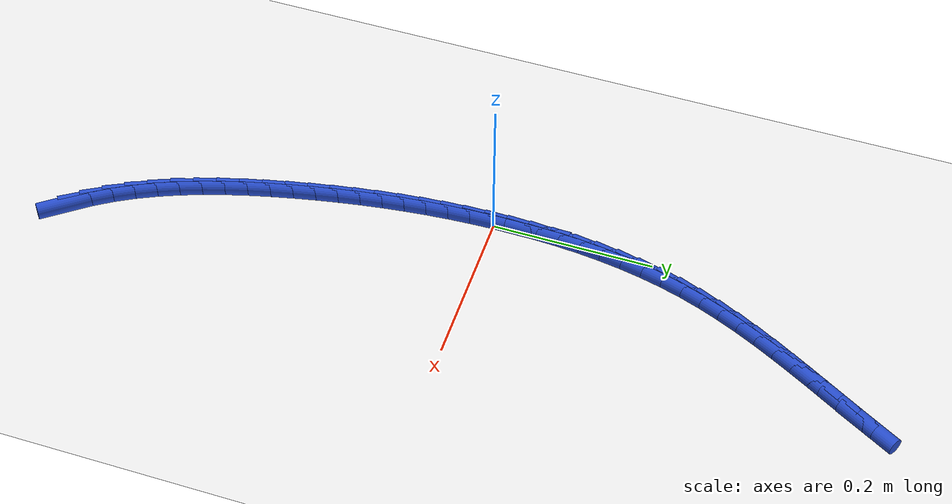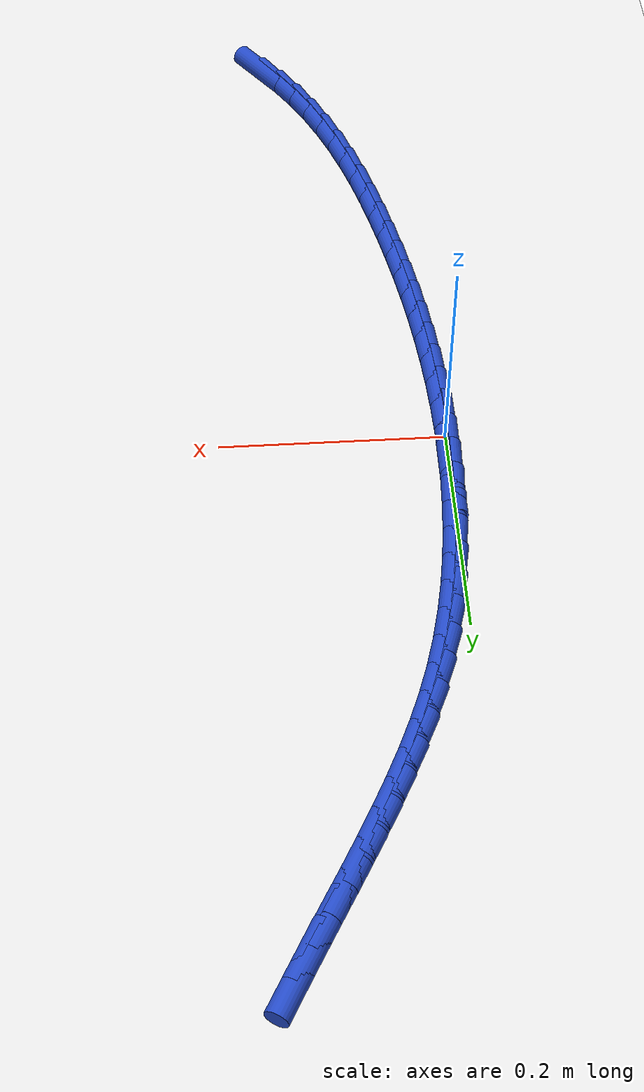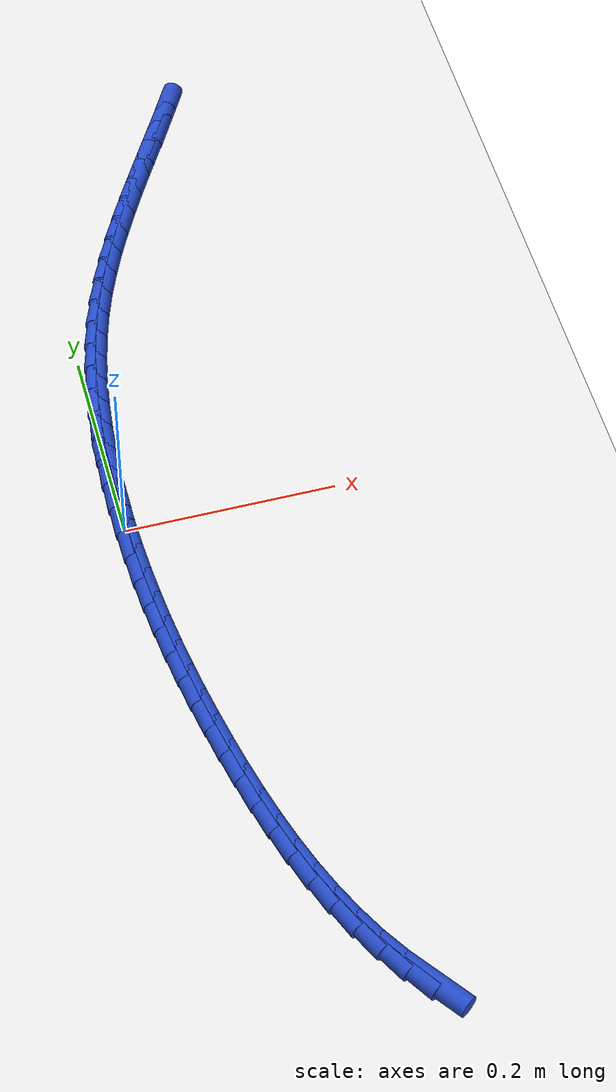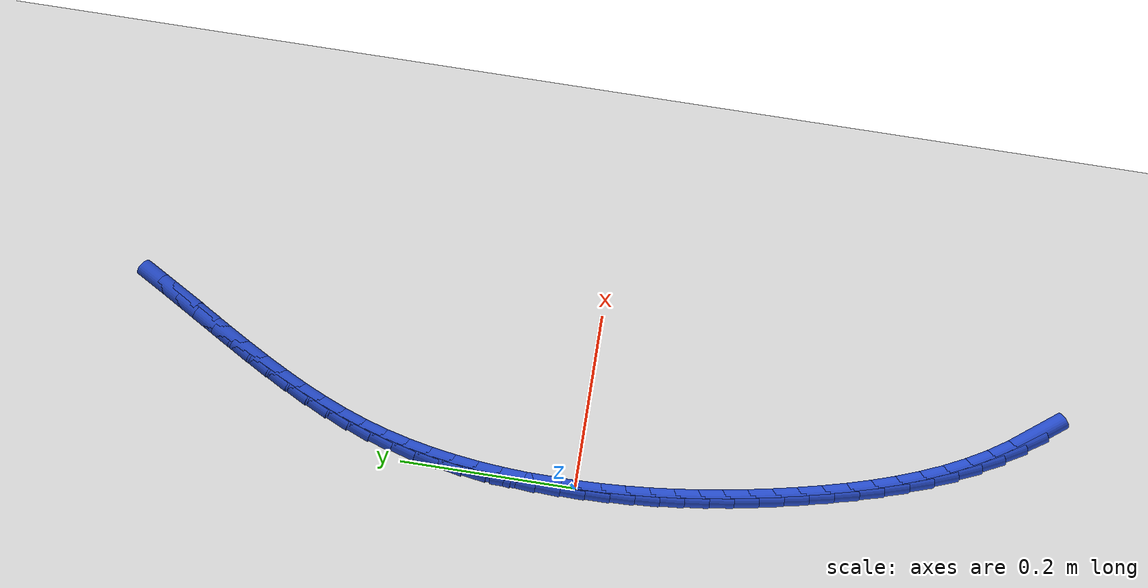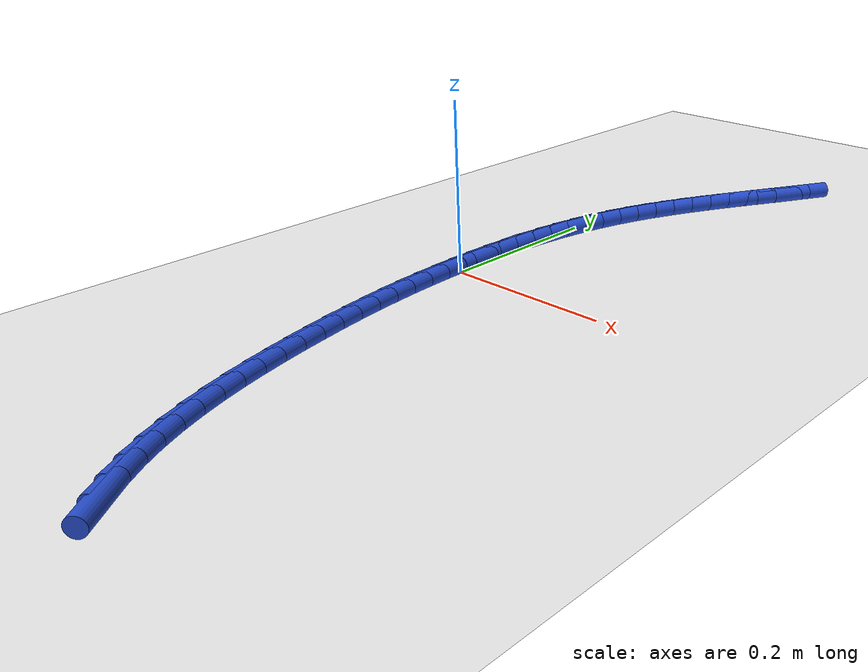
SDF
<sdf version="1.6">
 <world name="default">
  <model name="ground_plane">
   <static>1</static>
   <link name="link">
    <collision name="collision">
     <geometry><plane><normal>0 0 1</normal><size>100 100</size></plane></geometry>
     <surface><friction><ode><mu>100</mu><mu2>50</mu2></ode></friction></surface>
    </collision>
    <visual name="visual">
     <cast_shadows>0</cast_shadows>
     <geometry><plane><normal>0 0 1</normal><size>100 100</size></plane></geometry>
     <material>
      <script><uri>file://media/materials/scripts/gazebo.material</uri><name>Gazebo/WhiteGlow</name></script>
     </material>
    </visual>
   </link>
  </model>
  <model name="line">
   <link name="link_0">
    <pose>-2.2985086056692694e-17 -8.326672684688674e-17 0.01 0 1.57 -1.5634428440553227</pose>
    <collision name="collision">
     <geometry><cylinder><radius>0.01</radius><length>0.08</length></cylinder></geometry>
    </collision>
    <visual name="visual">
     <material>
      <script><name>Gazebo/Blue</name><uri>file://media/materials/scripts/gazebo.material</uri></script>
     </material>
     <geometry><cylinder><radius>0.01</radius><length>0.08</length></cylinder></geometry>
    </visual>
   </link>
   <link name="link_1">
    <pose>-0.0002044826050421178 0.02780708496362598 0.01 0 1.57 1.5510789028608345</pose>
    <collision name="collision">
     <geometry><cylinder><radius>0.01</radius><length>0.08</length></cylinder></geometry>
    </collision>
    <visual name="visual">
     <material>
      <script><name>Gazebo/Blue</name><uri>file://media/materials/scripts/gazebo.material</uri></script>
     </material>
     <geometry><cylinder><radius>0.01</radius><length>0.08</length></cylinder></geometry>
    </visual>
   </link>
   <link name="link_2">
    <pose>0.00034536327193280674 0.055689764830520225 0.01 0 1.57 1.5217244483602832</pose>
    <collision name="collision">
     <geometry><cylinder><radius>0.01</radius><length>0.08</length></cylinder></geometry>
    </collision>
    <visual name="visual">
     <material>
      <script><name>Gazebo/Blue</name><uri>file://media/materials/scripts/gazebo.material</uri></script>
     </material>
     <geometry><cylinder><radius>0.01</radius><length>0.08</length></cylinder></geometry>
    </visual>
   </link>
   <link name="link_3">
    <pose>0.001714784121771219 0.08357378936824042 0.01 0 1.57 1.489917707448705</pose>
    <collision name="collision">
     <geometry><cylinder><radius>0.01</radius><length>0.08</length></cylinder></geometry>
    </collision>
    <visual name="visual">
     <material>
      <script><name>Gazebo/Blue</name><uri>file://media/materials/scripts/gazebo.material</uri></script>
     </material>
     <geometry><cylinder><radius>0.01</radius><length>0.08</length></cylinder></geometry>
    </visual>
   </link>
   <link name="link_4">
    <pose>0.003969026435319588 0.11138490834434424 0.01 0 1.57 1.4554804458145005</pose>
    <collision name="collision">
     <geometry><cylinder><radius>0.01</radius><length>0.08</length></cylinder></geometry>
    </collision>
    <visual name="visual">
     <material>
      <script><name>Gazebo/Blue</name><uri>file://media/materials/scripts/gazebo.material</uri></script>
     </material>
     <geometry><cylinder><radius>0.01</radius><length>0.08</length></cylinder></geometry>
    </visual>
   </link>
   <link name="link_5">
    <pose>0.007173336703424378 0.13904887152638937 0.01 0 1.57 1.4182291277863004</pose>
    <collision name="collision">
     <geometry><cylinder><radius>0.01</radius><length>0.08</length></cylinder></geometry>
    </collision>
    <visual name="visual">
     <material>
      <script><name>Gazebo/Blue</name><uri>file://media/materials/scripts/gazebo.material</uri></script>
     </material>
     <geometry><cylinder><radius>0.01</radius><length>0.08</length></cylinder></geometry>
    </visual>
   </link>
   <link name="link_6">
    <pose>0.01139296141693206 0.1664914286819335 0.01 0 1.57 1.377980974339844</pose>
    <collision name="collision">
     <geometry><cylinder><radius>0.01</radius><length>0.08</length></cylinder></geometry>
    </collision>
    <visual name="visual">
     <material>
      <script><name>Gazebo/Blue</name><uri>file://media/materials/scripts/gazebo.material</uri></script>
     </material>
     <geometry><cylinder><radius>0.01</radius><length>0.08</length></cylinder></geometry>
    </visual>
   </link>
   <link name="link_7">
    <pose>0.016693147066689104 0.19363832957853436 0.01 0 1.57 1.3345623758030936</pose>
    <collision name="collision">
     <geometry><cylinder><radius>0.01</radius><length>0.08</length></cylinder></geometry>
    </collision>
    <visual name="visual">
     <material>
      <script><name>Gazebo/Blue</name><uri>file://media/materials/scripts/gazebo.material</uri></script>
     </material>
     <geometry><cylinder><radius>0.01</radius><length>0.08</length></cylinder></geometry>
    </visual>
   </link>
   <link name="link_8">
    <pose>0.023139140143541972 0.2204153239837496 0.01 0 1.57 1.2878201085547285</pose>
    <collision name="collision">
     <geometry><cylinder><radius>0.01</radius><length>0.08</length></cylinder></geometry>
    </collision>
    <visual name="visual">
     <material>
      <script><name>Gazebo/Blue</name><uri>file://media/materials/scripts/gazebo.material</uri></script>
     </material>
     <geometry><cylinder><radius>0.01</radius><length>0.08</length></cylinder></geometry>
    </visual>
   </link>
   <link name="link_9">
    <pose>0.030796187138337143 0.246748161665137 0.01 0 1.57 1.2388443943537084</pose>
    <collision name="collision">
     <geometry><cylinder><radius>0.01</radius><length>0.08</length></cylinder></geometry>
    </collision>
    <visual name="visual">
     <material>
      <script><name>Gazebo/Blue</name><uri>file://media/materials/scripts/gazebo.material</uri></script>
     </material>
     <geometry><cylinder><radius>0.01</radius><length>0.08</length></cylinder></geometry>
    </visual>
   </link>
   <link name="link_10">
    <pose>0.03970125659712732 0.27258187699370784 0.01 0 1.57 1.1937577209074512</pose>
    <collision name="collision">
     <geometry><cylinder><radius>0.01</radius><length>0.08</length></cylinder></geometry>
    </collision>
    <visual name="visual">
     <material>
      <script><name>Gazebo/Blue</name><uri>file://media/materials/scripts/gazebo.material</uri></script>
     </material>
     <geometry><cylinder><radius>0.01</radius><length>0.08</length></cylinder></geometry>
    </visual>
   </link>
   <link name="link_11">
    <pose>0.049749779566920074 0.2979580281353544 0.01 0 1.57 1.1546983812864875</pose>
    <collision name="collision">
     <geometry><cylinder><radius>0.01</radius><length>0.08</length></cylinder></geometry>
    </collision>
    <visual name="visual">
     <material>
      <script><name>Gazebo/Blue</name><uri>file://media/materials/scripts/gazebo.material</uri></script>
     </material>
     <geometry><cylinder><radius>0.01</radius><length>0.08</length></cylinder></geometry>
    </visual>
   </link>
   <link name="link_12">
    <pose>0.06079299601231992 0.32294831008191427 0.01 0 1.57 1.1218084679741847</pose>
    <collision name="collision">
     <geometry><cylinder><radius>0.01</radius><length>0.08</length></cylinder></geometry>
    </collision>
    <visual name="visual">
     <material>
      <script><name>Gazebo/Blue</name><uri>file://media/materials/scripts/gazebo.material</uri></script>
     </material>
     <geometry><cylinder><radius>0.01</radius><length>0.08</length></cylinder></geometry>
    </visual>
   </link>
   <link name="link_13">
    <pose>0.07268213115396217 0.3476244278801135 0.01 0 1.57 1.0951256002088305</pose>
    <collision name="collision">
     <geometry><cylinder><radius>0.01</radius><length>0.08</length></cylinder></geometry>
    </collision>
    <visual name="visual">
     <material>
      <script><name>Gazebo/Blue</name><uri>file://media/materials/scripts/gazebo.material</uri></script>
     </material>
     <geometry><cylinder><radius>0.01</radius><length>0.08</length></cylinder></geometry>
    </visual>
   </link>
   <link name="link_14">
    <pose>0.08526841021248227 0.3720580865766789 0.01 0 1.57 1.074620836023597</pose>
    <collision name="collision">
     <geometry><cylinder><radius>0.01</radius><length>0.08</length></cylinder></geometry>
    </collision>
    <visual name="visual">
     <material>
      <script><name>Gazebo/Blue</name><uri>file://media/materials/scripts/gazebo.material</uri></script>
     </material>
     <geometry><cylinder><radius>0.01</radius><length>0.08</length></cylinder></geometry>
    </visual>
   </link>
   <link name="link_15">
    <pose>0.09840305840851547 0.3963209912183363 0.01 0 1.57 1.0602297704022232</pose>
    <collision name="collision">
     <geometry><cylinder><radius>0.01</radius><length>0.08</length></cylinder></geometry>
    </collision>
    <visual name="visual">
     <material>
      <script><name>Gazebo/Blue</name><uri>file://media/materials/scripts/gazebo.material</uri></script>
     </material>
     <geometry><cylinder><radius>0.01</radius><length>0.08</length></cylinder></geometry>
    </visual>
   </link>
   <link name="link_16">
    <pose>0.11193730096269733 0.42048484685181275 0.01 0 1.57 1.0518760612685927</pose>
    <collision name="collision">
     <geometry><cylinder><radius>0.01</radius><length>0.08</length></cylinder></geometry>
    </collision>
    <visual name="visual">
     <material>
      <script><name>Gazebo/Blue</name><uri>file://media/materials/scripts/gazebo.material</uri></script>
     </material>
     <geometry><cylinder><radius>0.01</radius><length>0.08</length></cylinder></geometry>
    </visual>
   </link>
   <link name="link_17">
    <pose>0.1257223630956631 0.4446213585238343 0.01 0 1.57 1.049487288630421</pose>
    <collision name="collision">
     <geometry><cylinder><radius>0.01</radius><length>0.08</length></cylinder></geometry>
    </collision>
    <visual name="visual">
     <material>
      <script><name>Gazebo/Blue</name><uri>file://media/materials/scripts/gazebo.material</uri></script>
     </material>
     <geometry><cylinder><radius>0.01</radius><length>0.08</length></cylinder></geometry>
    </visual>
   </link>
   <link name="link_18">
    <pose>0.1396094700280482 0.4688022312811273 0.01 0 1.57 1.053003639604194</pose>
    <collision name="collision">
     <geometry><cylinder><radius>0.01</radius><length>0.08</length></cylinder></geometry>
    </collision>
    <visual name="visual">
     <material>
      <script><name>Gazebo/Blue</name><uri>file://media/materials/scripts/gazebo.material</uri></script>
     </material>
     <geometry><cylinder><radius>0.01</radius><length>0.08</length></cylinder></geometry>
    </visual>
   </link>
   <link name="link_19">
    <pose>0.15344984698048791 0.4930991701704184 0.01 0 1.57 1.0623800239385943</pose>
    <collision name="collision">
     <geometry><cylinder><radius>0.01</radius><length>0.08</length></cylinder></geometry>
    </collision>
    <visual name="visual">
     <material>
      <script><name>Gazebo/Blue</name><uri>file://media/materials/scripts/gazebo.material</uri></script>
     </material>
     <geometry><cylinder><radius>0.01</radius><length>0.08</length></cylinder></geometry>
    </visual>
   </link>
   <link name="link_231">
    <pose>0.1376694505724963 -0.49993608078944424 0.01 0 1.57 -0.9209237272422568</pose>
    <collision name="collision">
     <geometry><cylinder><radius>0.01</radius><length>0.08</length></cylinder></geometry>
    </collision>
    <visual name="visual">
     <material>
      <script><name>Gazebo/Blue</name><uri>file://media/materials/scripts/gazebo.material</uri></script>
     </material>
     <geometry><cylinder><radius>0.01</radius><length>0.08</length></cylinder></geometry>
    </visual>
   </link>
   <link name="link_232">
    <pose>0.12136095642540941 -0.47847763163341933 0.01 0 1.57 -0.9936751664198782</pose>
    <collision name="collision">
     <geometry><cylinder><radius>0.01</radius><length>0.08</length></cylinder></geometry>
    </collision>
    <visual name="visual">
     <material>
      <script><name>Gazebo/Blue</name><uri>file://media/materials/scripts/gazebo.material</uri></script>
     </material>
     <geometry><cylinder><radius>0.01</radius><length>0.08</length></cylinder></geometry>
    </visual>
   </link>
   <link name="link_233">
    <pose>0.10658607377752315 -0.45578410720509355 0.01 0 1.57 -1.0606192972004846</pose>
    <collision name="collision">
     <geometry><cylinder><radius>0.01</radius><length>0.08</length></cylinder></geometry>
    </collision>
    <visual name="visual">
     <material>
      <script><name>Gazebo/Blue</name><uri>file://media/materials/scripts/gazebo.material</uri></script>
     </material>
     <geometry><cylinder><radius>0.01</radius><length>0.08</length></cylinder></geometry>
    </visual>
   </link>
   <link name="link_234">
    <pose>0.0932616130431589 -0.43197304344559884 0.01 0 1.57 -1.1201538837720577</pose>
    <collision name="collision">
     <geometry><cylinder><radius>0.01</radius><length>0.08</length></cylinder></geometry>
    </collision>
    <visual name="visual">
     <material>
      <script><name>Gazebo/Blue</name><uri>file://media/materials/scripts/gazebo.material</uri></script>
     </material>
     <geometry><cylinder><radius>0.01</radius><length>0.08</length></cylinder></geometry>
    </visual>
   </link>
   <link name="link_235">
    <pose>0.08127279752170238 -0.40719496468491273 0.01 0 1.57 -1.17256310298957</pose>
    <collision name="collision">
     <geometry><cylinder><radius>0.01</radius><length>0.08</length></cylinder></geometry>
    </collision>
    <visual name="visual">
     <material>
      <script><name>Gazebo/Blue</name><uri>file://media/materials/scripts/gazebo.material</uri></script>
     </material>
     <geometry><cylinder><radius>0.01</radius><length>0.08</length></cylinder></geometry>
    </visual>
   </link>
   <link name="link_236">
    <pose>0.07050485051253923 -0.3816003952530122 0.01 0 1.57 -1.2182445359096363</pose>
    <collision name="collision">
     <geometry><cylinder><radius>0.01</radius><length>0.08</length></cylinder></geometry>
    </collision>
    <visual name="visual">
     <material>
      <script><name>Gazebo/Blue</name><uri>file://media/materials/scripts/gazebo.material</uri></script>
     </material>
     <geometry><cylinder><radius>0.01</radius><length>0.08</length></cylinder></geometry>
    </visual>
   </link>
   <link name="link_237">
    <pose>0.0608429953150551 -0.3553398594798747 0.01 0 1.57 -1.2576339953544569</pose>
    <collision name="collision">
     <geometry><cylinder><radius>0.01</radius><length>0.08</length></cylinder></geometry>
    </collision>
    <visual name="visual">
     <material>
      <script><name>Gazebo/Blue</name><uri>file://media/materials/scripts/gazebo.material</uri></script>
     </material>
     <geometry><cylinder><radius>0.01</radius><length>0.08</length></cylinder></geometry>
    </visual>
   </link>
   <link name="link_238">
    <pose>0.052172455228635624 -0.32856388169547734 0.01 0 1.57 -1.2911530140726715</pose>
    <collision name="collision">
     <geometry><cylinder><radius>0.01</radius><length>0.08</length></cylinder></geometry>
    </collision>
    <visual name="visual">
     <material>
      <script><name>Gazebo/Blue</name><uri>file://media/materials/scripts/gazebo.material</uri></script>
     </material>
     <geometry><cylinder><radius>0.01</radius><length>0.08</length></cylinder></geometry>
    </visual>
   </link>
   <link name="link_239">
    <pose>0.044378453552666515 -0.3014229862297976 0.01 0 1.57 -1.319174150495732</pose>
    <collision name="collision">
     <geometry><cylinder><radius>0.01</radius><length>0.08</length></cylinder></geometry>
    </collision>
    <visual name="visual">
     <material>
      <script><name>Gazebo/Blue</name><uri>file://media/materials/scripts/gazebo.material</uri></script>
     </material>
     <geometry><cylinder><radius>0.01</radius><length>0.08</length></cylinder></geometry>
    </visual>
   </link>
   <link name="link_240">
    <pose>0.03734621358653355 -0.2740676974128132 0.01 0 1.57 -1.3419988728574523</pose>
    <collision name="collision">
     <geometry><cylinder><radius>0.01</radius><length>0.08</length></cylinder></geometry>
    </collision>
    <visual name="visual">
     <material>
      <script><name>Gazebo/Blue</name><uri>file://media/materials/scripts/gazebo.material</uri></script>
     </material>
     <geometry><cylinder><radius>0.01</radius><length>0.08</length></cylinder></geometry>
    </visual>
   </link>
   <link name="link_241">
    <pose>0.030960967662632823 -0.2466485274945462 0.01 0 1.57 -1.3610583186772751</pose>
    <collision name="collision">
     <geometry><cylinder><radius>0.01</radius><length>0.08</length></cylinder></geometry>
    </collision>
    <visual name="visual">
     <material>
      <script><name>Gazebo/Blue</name><uri>file://media/materials/scripts/gazebo.material</uri></script>
     </material>
     <geometry><cylinder><radius>0.01</radius><length>0.08</length></cylinder></geometry>
    </visual>
   </link>
   <link name="link_242">
    <pose>0.025135022133995415 -0.21927978231178005 0.01 0 1.57 -1.3803215847160029</pose>
    <collision name="collision">
     <geometry><cylinder><radius>0.01</radius><length>0.08</length></cylinder></geometry>
    </collision>
    <visual name="visual">
     <material>
      <script><name>Gazebo/Blue</name><uri>file://media/materials/scripts/gazebo.material</uri></script>
     </material>
     <geometry><cylinder><radius>0.01</radius><length>0.08</length></cylinder></geometry>
    </visual>
   </link>
   <link name="link_243">
    <pose>0.019867397436252633 -0.19195980391628095 0.01 0 1.57 -1.4005327275885666</pose>
    <collision name="collision">
     <geometry><cylinder><radius>0.01</radius><length>0.08</length></cylinder></geometry>
    </collision>
    <visual name="visual">
     <material>
      <script><name>Gazebo/Blue</name><uri>file://media/materials/scripts/gazebo.material</uri></script>
     </material>
     <geometry><cylinder><radius>0.01</radius><length>0.08</length></cylinder></geometry>
    </visual>
   </link>
   <link name="link_244">
    <pose>0.01517443871443897 -0.16466376581767675 0.01 0 1.57 -1.4216409414018467</pose>
    <collision name="collision">
     <geometry><cylinder><radius>0.01</radius><length>0.08</length></cylinder></geometry>
    </collision>
    <visual name="visual">
     <material>
      <script><name>Gazebo/Blue</name><uri>file://media/materials/scripts/gazebo.material</uri></script>
     </material>
     <geometry><cylinder><radius>0.01</radius><length>0.08</length></cylinder></geometry>
    </visual>
   </link>
   <link name="link_245">
    <pose>0.011072491113588918 -0.13736684152559514 0.01 0 1.57 -1.4435860355344465</pose>
    <collision name="collision">
     <geometry><cylinder><radius>0.01</radius><length>0.08</length></cylinder></geometry>
    </collision>
    <visual name="visual">
     <material>
      <script><name>Gazebo/Blue</name><uri>file://media/materials/scripts/gazebo.material</uri></script>
     </material>
     <geometry><cylinder><radius>0.01</radius><length>0.08</length></cylinder></geometry>
    </visual>
   </link>
   <link name="link_246">
    <pose>0.007577899778736966 -0.110044204549664 0.01 0 1.57 -1.466298679720776</pose>
    <collision name="collision">
     <geometry><cylinder><radius>0.01</radius><length>0.08</length></cylinder></geometry>
    </collision>
    <visual name="visual">
     <material>
      <script><name>Gazebo/Blue</name><uri>file://media/materials/scripts/gazebo.material</uri></script>
     </material>
     <geometry><cylinder><radius>0.01</radius><length>0.08</length></cylinder></geometry>
    </visual>
   </link>
   <link name="link_247">
    <pose>0.004707009854917604 -0.0826710283995111 0.01 0 1.57 -1.4897009126190737</pose>
    <collision name="collision">
     <geometry><cylinder><radius>0.01</radius><length>0.08</length></cylinder></geometry>
    </collision>
    <visual name="visual">
     <material>
      <script><name>Gazebo/Blue</name><uri>file://media/materials/scripts/gazebo.material</uri></script>
     </material>
     <geometry><cylinder><radius>0.01</radius><length>0.08</length></cylinder></geometry>
    </visual>
   </link>
   <link name="link_248">
    <pose>0.0024761664871653212 -0.05522248658476426 0.01 0 1.57 -1.5137069225312332</pose>
    <collision name="collision">
     <geometry><cylinder><radius>0.01</radius><length>0.08</length></cylinder></geometry>
    </collision>
    <visual name="visual">
     <material>
      <script><name>Gazebo/Blue</name><uri>file://media/materials/scripts/gazebo.material</uri></script>
     </material>
     <geometry><cylinder><radius>0.01</radius><length>0.08</length></cylinder></geometry>
    </visual>
   </link>
   <link name="link_249">
    <pose>0.0009017148205146144 -0.027673752615051315 0.01 0 1.57 -1.5382240942195446</pose>
    <collision name="collision">
     <geometry><cylinder><radius>0.01</radius><length>0.08</length></cylinder></geometry>
    </collision>
    <visual name="visual">
     <material>
      <script><name>Gazebo/Blue</name><uri>file://media/materials/scripts/gazebo.material</uri></script>
     </material>
     <geometry><cylinder><radius>0.01</radius><length>0.08</length></cylinder></geometry>
    </visual>
   </link>
   <link name="link_250">
    <pose>-2.949029909160572e-17 0.0 0.01 0 1.57 -1.5631542996228827</pose>
    <collision name="collision">
     <geometry><cylinder><radius>0.01</radius><length>0.08</length></cylinder></geometry>
    </collision>
    <visual name="visual">
     <material>
      <script><name>Gazebo/Blue</name><uri>file://media/materials/scripts/gazebo.material</uri></script>
     </material>
     <geometry><cylinder><radius>0.01</radius><length>0.08</length></cylinder></geometry>
    </visual>
   </link>
   <link name="link_251">
    <pose>-0.00021263282934412151 0.02782359775076182 0.01 0 1.57 1.5531972594412693</pose>
    <collision name="collision">
     <geometry><cylinder><radius>0.01</radius><length>0.08</length></cylinder></geometry>
    </collision>
    <visual name="visual">
     <material>
      <script><name>Gazebo/Blue</name><uri>file://media/materials/scripts/gazebo.material</uri></script>
     </material>
     <geometry><cylinder><radius>0.01</radius><length>0.08</length></cylinder></geometry>
    </visual>
   </link>
   <link name="link_252">
    <pose>0.00028016147751683436 0.05582186712760636 0.01 0 1.57 1.565777520730993</pose>
    <collision name="collision">
     <geometry><cylinder><radius>0.01</radius><length>0.08</length></cylinder></geometry>
    </collision>
    <visual name="visual">
     <material>
      <script><name>Gazebo/Blue</name><uri>file://media/materials/scripts/gazebo.material</uri></script>
     </material>
     <geometry><cylinder><radius>0.01</radius><length>0.08</length></cylinder></geometry>
    </visual>
   </link>
  </model>
 </world>
</sdf>
